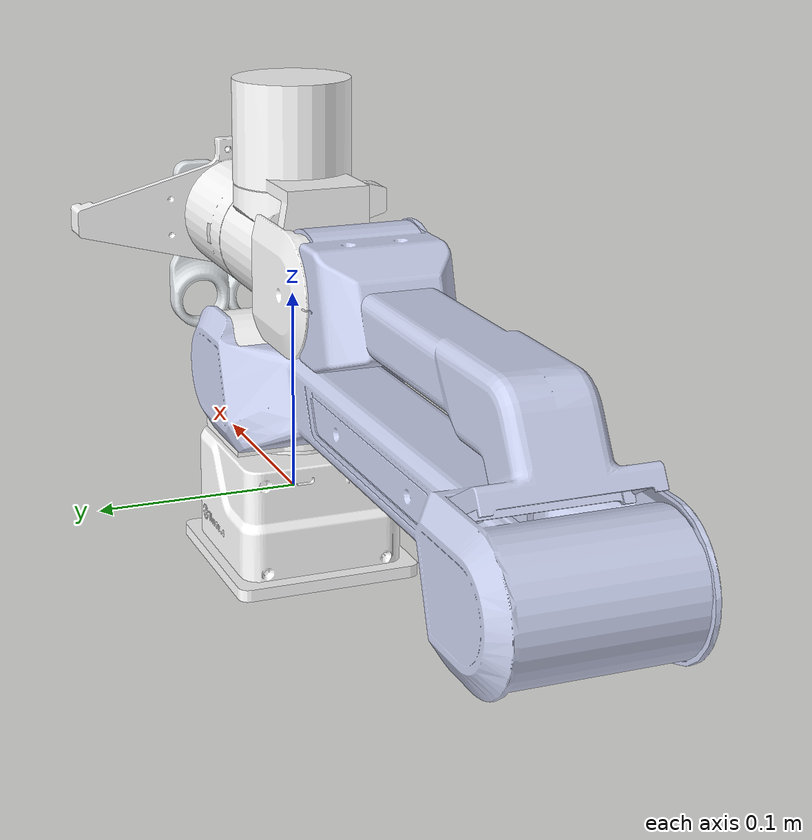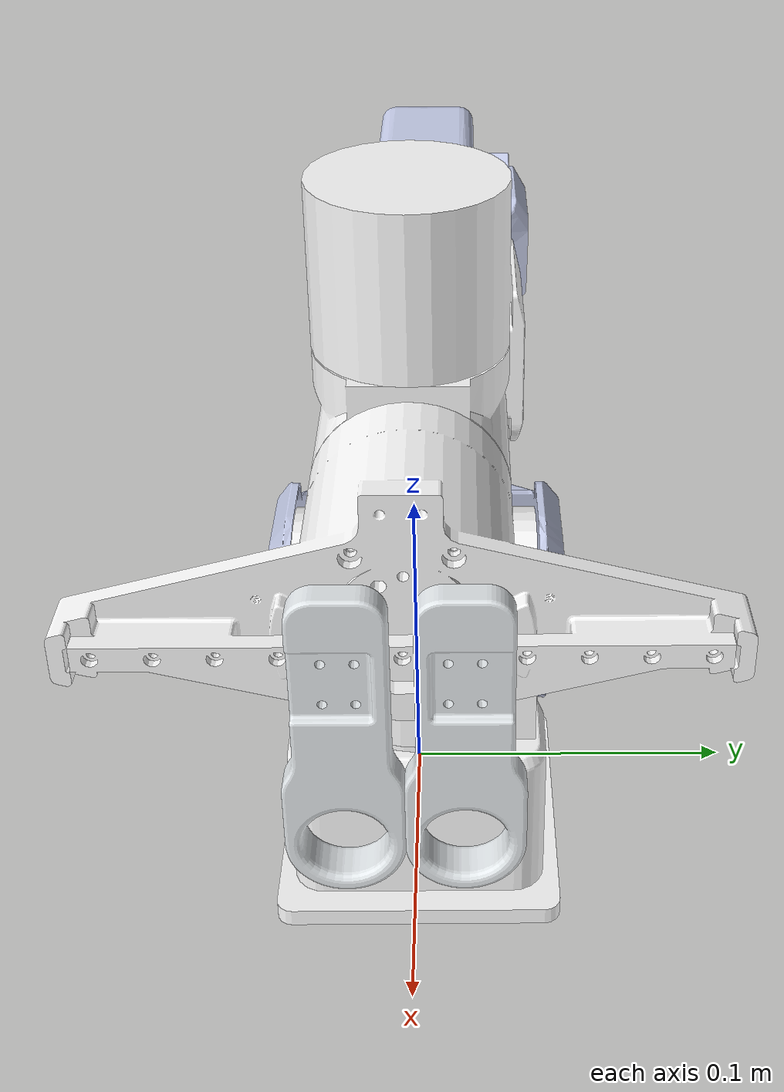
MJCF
<mujoco model="S1_robot">
  <compiler angle="radian" meshdir="meshes" />
  <asset>
    <mesh name="base_link" file="base_link.STL"/>
    <mesh name="1_Link" file="1_Link.STL"/>
    <mesh name="2_Link" file="2_Link.STL"/>
    <mesh name="3_Link" file="3_Link.STL"/>
    <mesh name="4_Link" file="4_Link.STL"/>
    <mesh name="5_Link" file="5_Link.STL"/>
    <mesh name="6_Link" file="6_Link.STL"/>
    <mesh name="8_1_Link" file="8_1_Link.STL"/>
    <mesh name="8_2_Link" file="8_2_Link.STL"/>
  </asset>

  <worldbody>
    <body name="base_link" pos="0 0 0">
    <geom type="mesh" rgba="1 1 1 1" mesh="base_link"/>
    <body name="1_Link" >
      <inertial pos="0 -5e-06 0.0590654" quat="0.707107 0.707107 0 0" mass="0.240435" diaginertia="0.000186308 0.000164031 0.000128092"/>
      <joint name="1joint" pos="0 0 0" axis="0 0 1" range="-2.967 2.967" actuatorfrcrange="-9 9" damping="0.01"/>
      <geom type="mesh" rgba="1 1 1 1" mesh="1_Link"/>
      <body name="2_Link" pos="0 0 0.06525">
        <inertial pos="-0.251879 0.000517957 -7.29157e-05" quat="0.000789709 0.712914 0.000571266 0.701251" mass="0.27896" diaginertia="0.00101012 0.000968578 0.00016357"/>
        <joint name="2joint" pos="0 0 0" axis="0 1 0" range="0 3.14" actuatorfrcrange="-9 9" damping="0.01"/>
        <geom type="mesh" rgba="0.792157 0.819608 0.933333 1" mesh="2_Link"/>
        <body name="3_Link" pos="-0.3 0.000495 0">
          <inertial pos="0.190378 -0.00362159 0.0563752" quat="0.532483 0.48923 0.485557 0.491274" mass="0.196496" diaginertia="0.000365387 0.000357218 7.49679e-05"/>
          <joint name="3joint" pos="0 0 0" axis="0 -1 0" range="0 3.14" actuatorfrcrange="-9 9" damping="0.01"/>
          <geom type="mesh" rgba="0.796078 0.823529 0.937255 1" mesh="3_Link"/>
          <body name="4_Link" pos="0.22 -0.000495 0.057">
            <inertial pos="0.0683945 0.00252083 0.0485252" quat="0.748495 0.318631 0.279259 0.510141" mass="0.160912" diaginertia="0.000225826 0.000223253 6.28301e-05"/>
            <joint name="4joint" pos="0 0 0" axis="0 1 0" range="-1.57 1.518" actuatorfrcrange="-3 3" damping="0.01"/>
            <geom type="mesh" rgba="1 1 1 1" mesh="4_Link"/>
            <body name="5_Link" pos="0.0807873 0 0.0591737">
              <inertial pos="0.000956924 -9.47221e-11 -0.0552063" quat="0.998968 -2.28286e-07 -0.0454145 5.02154e-06" mass="0.148471" diaginertia="7.23521e-05 7.08257e-05 6.2135e-05"/>
              <joint name="5joint" pos="0 0 0" axis="0 0 -1" range="-1.57 1.57" actuatorfrcrange="-3 3" damping="0.01"/>
              <geom type="mesh" rgba="1 1 1 1" mesh="5_Link"/>
              <body name="6_Link" pos="0.0012127 0 -0.059174">
                <inertial pos="0.0626158 3.32172e-08 0.00043456" quat="0.707103 0.707103 -0.00238369 0.00238369" mass="0.191166" diaginertia="0.000155312 0.000139085 5.70486e-05"/>
                <joint name="6joint" pos="0 0 0" axis="1 0 0" range="-1.57 1.57" actuatorfrcrange="-3 3" damping="0.01"/>
                <geom type="mesh" rgba="1 1 1 1" mesh="6_Link"/>
                <body name="8_1_Link" pos="0.1 -0.001 -0.066" quat="0.500398 0.5 0.499602 0.5">
                  <inertial pos="0.02 0.066 0" quat="0 0 0 1" mass="0.0063456" diaginertia="1.09204e-06 1.09204e-06 1.09204e-06"/>
                  <joint name="7joint" pos="0 0 0" axis="1 0 0" type="slide" range="0 0.05" actuatorfrcrange="-3 3"/>
                  <geom type="mesh" rgba="0.898039 0.917647 0.929412 1" mesh="8_1_Link"/>
                </body>
                <body name="8_2_Link" pos="0.1 -0.031 -0.066" quat="0.500398 0.5 0.499602 0.5">
                  <inertial pos="0.012 0.066 0" quat="0 0 0 1" mass="0.0063456" diaginertia="1.09204e-06 1.09204e-06 1.09204e-06"/>
                  <joint name="8joint" pos="0 0 0" axis="-1 0 0" type="slide" range="0 0.05" actuatorfrcrange="-3 3"/>
                  <geom type="mesh" rgba="0.898039 0.917647 0.929412 1" mesh="8_2_Link"/>
                </body>
              </body>
            </body>
          </body>
        </body>
      </body>
    </body>
    </body>
  </worldbody>

  <contact>
    <exclude body1="base_link" body2="1_Link"/>
    <exclude body1="2_Link" body2="4_Link"/>
    <exclude body1="4_Link" body2="6_Link"/>
    <exclude body1="8_1_Link" body2="8_2_Link"/>
  </contact>
     <actuator>
    <motor name="act_1" joint="1joint" gear="1" ctrllimited="true" ctrlrange="-9 9"/>
    <motor name="act_2" joint="2joint" gear="1" ctrllimited="true" ctrlrange="-9 9"/>
    <motor name="act_3" joint="3joint" gear="1" ctrllimited="true" ctrlrange="-9 9"/>
    <motor name="act_4" joint="4joint" gear="1" ctrllimited="true" ctrlrange="-3 3"/>
    <motor name="act_5" joint="5joint" gear="1" ctrllimited="true" ctrlrange="-3 3"/>
    <motor name="act_6" joint="6joint" gear="1" ctrllimited="true" ctrlrange="-3 3"/>

    <motor name="act_7" joint="7joint" gear="1" ctrllimited="true" ctrlrange="-3 3"/>
  </actuator>
  <equality>
  <joint joint1="7joint" joint2="8joint" polycoef="0 1 0 0 0"/>
</equality>
</mujoco>
